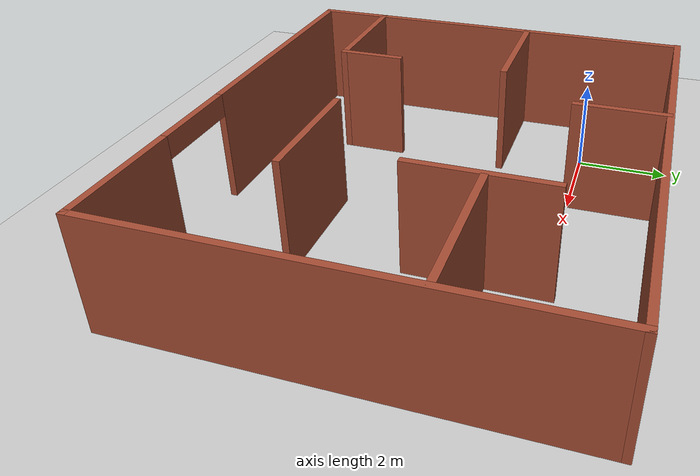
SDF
<sdf version="1.7">
 <world name="default">
  <light name="sun" type="directional">
   <pose>0 0 10 0 -0 0</pose>
   <diffuse>0.8 0.8 0.8 1</diffuse>
   <specular>0.2 0.2 0.2 1</specular>
   <attenuation>
    <range>1000</range>
    <constant>0.9</constant>
    <linear>0.01</linear>
    <quadratic>0.001</quadratic>
   </attenuation>
   <direction>-0.5 0.1 -0.9</direction>
   <spot><inner_angle>0</inner_angle><outer_angle>0</outer_angle><falloff>0</falloff></spot>
  </light>
  <model name="ground_plane">
   <static>1</static>
   <link name="link">
    <collision name="collision">
     <geometry><plane><normal>0 0 1</normal><size>100 100</size></plane></geometry>
     <surface>
      <contact><collide_bitmask>65535</collide_bitmask></contact>
      <friction><ode><mu>100</mu><mu2>50</mu2></ode></friction>
     </surface>
    </collision>
    <visual name="visual">
     <cast_shadows>0</cast_shadows>
     <geometry><plane><normal>0 0 1</normal><size>100 100</size></plane></geometry>
     <material>
      <script><uri>file://media/materials/scripts/gazebo.material</uri><name>Gazebo/Grey</name></script>
     </material>
    </visual>
   </link>
  </model>
  <gravity>0 0 -9.8</gravity>
  <magnetic_field>6e-06 2.3e-05 -4.2e-05</magnetic_field>
  <atmosphere type="adiabatic"/>
  <physics type="ode">
   <max_step_size>0.001</max_step_size>
   <real_time_factor>1</real_time_factor>
   <real_time_update_rate>1000</real_time_update_rate>
  </physics>
  <scene><ambient>0.4 0.4 0.4 1</ambient><background>0.7 0.7 0.7 1</background><shadows>1</shadows></scene>
  <audio><device>default</device></audio>
  <spherical_coordinates>
   <surface_model>EARTH_WGS84</surface_model>
   <latitude_deg>0</latitude_deg>
   <longitude_deg>0</longitude_deg>
   <elevation>0</elevation>
   <heading_deg>0</heading_deg>
  </spherical_coordinates>
  <model name="Room1">
   <pose>3.24853 -2.70039 0 0 -0 0</pose>
   <link name="Wall_10">
    <collision name="Wall_10_Collision">
     <geometry><box><size>9.25 0.15 2.5</size></box></geometry>
     <pose>0 0 1.25 0 -0 0</pose>
    </collision>
    <visual name="Wall_10_Visual">
     <pose>0 0 1.25 0 -0 0</pose>
     <geometry><box><size>9.25 0.15 2.5</size></box></geometry>
     <material>
      <script><uri>file://media/materials/scripts/gazebo.material</uri><name>Gazebo/Bricks</name></script>
      <ambient>1 1 1 1</ambient>
     </material>
     <meta><layer>0</layer></meta>
    </visual>
    <pose>-5.16614 0 0 0 -0 -1.5708</pose>
   </link>
   <link name="Wall_11">
    <pose>0.008864 -4.55 0 0 -0 0</pose>
    <visual name="Wall_11_Visual_0">
     <pose>-2.36823 0 1.25 0 -0 0</pose>
     <geometry><box><size>5.76355 0.15 2.5</size></box></geometry>
     <material>
      <script><uri>file://media/materials/scripts/gazebo.material</uri><name>Gazebo/Bricks</name></script>
      <ambient>1 1 1 1</ambient>
     </material>
     <meta><layer>0</layer></meta>
    </visual>
    <collision name="Wall_11_Collision_0">
     <geometry><box><size>5.76355 0.15 2.5</size></box></geometry>
     <pose>-2.36823 0 1.25 0 -0 0</pose>
    </collision>
    <visual name="Wall_11_Visual_1">
     <pose>3.85752 0 1.25 0 -0 0</pose>
     <geometry><box><size>2.78497 0.15 2.5</size></box></geometry>
     <material>
      <script><uri>file://media/materials/scripts/gazebo.material</uri><name>Gazebo/Bricks</name></script>
      <ambient>1 1 1 1</ambient>
     </material>
     <meta><layer>0</layer></meta>
    </visual>
    <collision name="Wall_11_Collision_1">
     <geometry><box><size>2.78497 0.15 2.5</size></box></geometry>
     <pose>3.85752 0 1.25 0 -0 0</pose>
    </collision>
    <visual name="Wall_11_Visual_2">
     <pose>1.48929 0 2.25 0 -0 0</pose>
     <geometry><box><size>1.95148 0.15 0.5</size></box></geometry>
     <material>
      <script><uri>file://media/materials/scripts/gazebo.material</uri><name>Gazebo/Bricks</name></script>
      <ambient>1 1 1 1</ambient>
     </material>
     <meta><layer>0</layer></meta>
    </visual>
    <collision name="Wall_11_Collision_2">
     <geometry><box><size>1.95148 0.15 0.5</size></box></geometry>
     <pose>1.48929 0 2.25 0 -0 0</pose>
    </collision>
   </link>
   <link name="Wall_12">
    <collision name="Wall_12_Collision">
     <geometry><box><size>9.25 0.15 2.5</size></box></geometry>
     <pose>0 0 1.25 0 -0 0</pose>
    </collision>
    <visual name="Wall_12_Visual">
     <pose>0 0 1.25 0 -0 0</pose>
     <geometry><box><size>9.25 0.15 2.5</size></box></geometry>
     <material>
      <script><uri>file://media/materials/scripts/gazebo.material</uri><name>Gazebo/Bricks</name></script>
      <ambient>1 1 1 1</ambient>
     </material>
     <meta><layer>0</layer></meta>
    </visual>
    <pose>5.18386 0 0 0 -0 1.5708</pose>
   </link>
   <link name="Wall_13">
    <collision name="Wall_13_Collision">
     <geometry><box><size>10.5177 0.15 2.5</size></box></geometry>
     <pose>0 0 1.25 0 -0 0</pose>
    </collision>
    <visual name="Wall_13_Visual">
     <pose>0 0 1.25 0 -0 0</pose>
     <geometry><box><size>10.5177 0.15 2.5</size></box></geometry>
     <material>
      <script><uri>file://media/materials/scripts/gazebo.material</uri><name>Gazebo/Bricks</name></script>
      <ambient>1 1 1 1</ambient>
     </material>
     <meta><layer>0</layer></meta>
    </visual>
    <pose>-0 4.55 0 0 -0 3.14159</pose>
   </link>
   <link name="Wall_15">
    <collision name="Wall_15_Collision">
     <geometry><box><size>2.75 0.15 2.5</size></box></geometry>
     <pose>0 0 1.25 0 -0 0</pose>
    </collision>
    <visual name="Wall_15_Visual">
     <pose>0 0 1.25 0 -0 0</pose>
     <geometry><box><size>2.75 0.15 2.5</size></box></geometry>
     <material>
      <script><uri>file://media/materials/scripts/gazebo.material</uri><name>Gazebo/Bricks</name></script>
      <ambient>1 1 1 1</ambient>
     </material>
     <meta><layer>0</layer></meta>
    </visual>
    <pose>1.34401 -2.08909 0 0 -0 0</pose>
   </link>
   <link name="Wall_17">
    <collision name="Wall_17_Collision">
     <geometry><box><size>3 0.15 2.5</size></box></geometry>
     <pose>0 0 1.25 0 -0 0</pose>
    </collision>
    <visual name="Wall_17_Visual">
     <pose>0 0 1.25 0 -0 0</pose>
     <geometry><box><size>3 0.15 2.5</size></box></geometry>
     <material>
      <script><uri>file://media/materials/scripts/gazebo.material</uri><name>Gazebo/Bricks</name></script>
      <ambient>1 1 1 1</ambient>
     </material>
     <meta><layer>0</layer></meta>
    </visual>
    <pose>1.9901 1.47071 0 0 -0 -1.5708</pose>
   </link>
   <link name="Wall_19">
    <collision name="Wall_19_Collision">
     <geometry><box><size>2.75 0.15 2.5</size></box></geometry>
     <pose>0 0 1.25 0 -0 0</pose>
    </collision>
    <visual name="Wall_19_Visual">
     <pose>0 0 1.25 0 -0 0</pose>
     <geometry><box><size>2.75 0.15 2.5</size></box></geometry>
     <material>
      <script><uri>file://media/materials/scripts/gazebo.material</uri><name>Gazebo/Bricks</name></script>
      <ambient>1 1 1 1</ambient>
     </material>
     <meta><layer>0</layer></meta>
    </visual>
    <pose>-3.81182 0.885099 0 0 -0 0</pose>
   </link>
   <link name="Wall_21">
    <collision name="Wall_21_Collision">
     <geometry><box><size>1.5 0.15 2.5</size></box></geometry>
     <pose>0 0 1.25 0 -0 0</pose>
    </collision>
    <visual name="Wall_21_Visual">
     <pose>0 0 1.25 0 -0 0</pose>
     <geometry><box><size>1.5 0.15 2.5</size></box></geometry>
     <material>
      <script><uri>file://media/materials/scripts/gazebo.material</uri><name>Gazebo/Bricks</name></script>
      <ambient>1 1 1 1</ambient>
     </material>
     <meta><layer>0</layer></meta>
    </visual>
    <pose>-2.5357 -2.31069 0 0 -0 -1.5708</pose>
   </link>
   <link name="Wall_23">
    <collision name="Wall_23_Collision">
     <geometry><box><size>2 0.15 2.5</size></box></geometry>
     <pose>0 0 1.25 0 -0 0</pose>
    </collision>
    <visual name="Wall_23_Visual">
     <pose>0 0 1.25 0 -0 0</pose>
     <geometry><box><size>2 0.15 2.5</size></box></geometry>
     <material>
      <script><uri>file://media/materials/scripts/gazebo.material</uri><name>Gazebo/Bricks</name></script>
      <ambient>1 1 1 1</ambient>
     </material>
     <meta><layer>0</layer></meta>
    </visual>
    <pose>-1.27874 3.58553 0 0 -0 -1.5708</pose>
   </link>
   <link name="Wall_25">
    <collision name="Wall_25_Collision">
     <geometry><box><size>3.25 0.15 2.5</size></box></geometry>
     <pose>0 0 1.25 0 -0 0</pose>
    </collision>
    <visual name="Wall_25_Visual">
     <pose>0 0 1.25 0 -0 0</pose>
     <geometry><box><size>3.25 0.15 2.5</size></box></geometry>
     <material>
      <script><uri>file://media/materials/scripts/gazebo.material</uri><name>Gazebo/Bricks</name></script>
      <ambient>1 1 1 1</ambient>
     </material>
     <meta><layer>0</layer></meta>
    </visual>
    <pose>3.57745 1.56381 0 0 -0 0</pose>
   </link>
   <link name="Wall_27">
    <collision name="Wall_27_Collision">
     <geometry><box><size>2.75 0.15 2.5</size></box></geometry>
     <pose>0 0 1.25 0 -0 0</pose>
    </collision>
    <visual name="Wall_27_Visual">
     <pose>0 0 1.25 0 -0 0</pose>
     <geometry><box><size>2.75 0.15 2.5</size></box></geometry>
     <material>
      <script><uri>file://media/materials/scripts/gazebo.material</uri><name>Gazebo/Bricks</name></script>
      <ambient>1 1 1 1</ambient>
     </material>
     <meta><layer>0</layer></meta>
    </visual>
    <pose>-3.8357 -2.9857 0 0 -0 0</pose>
   </link>
   <static>1</static>
  </model>
 </world>
</sdf>
